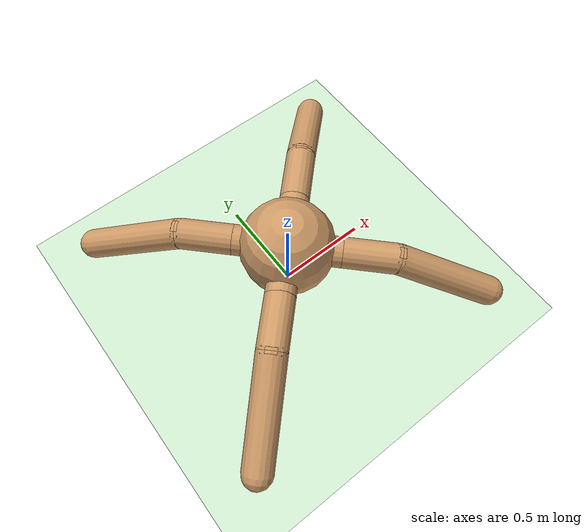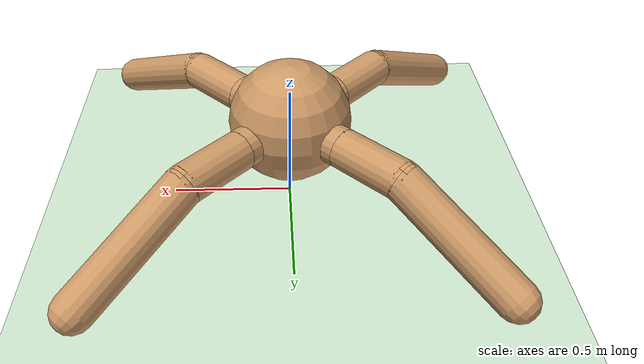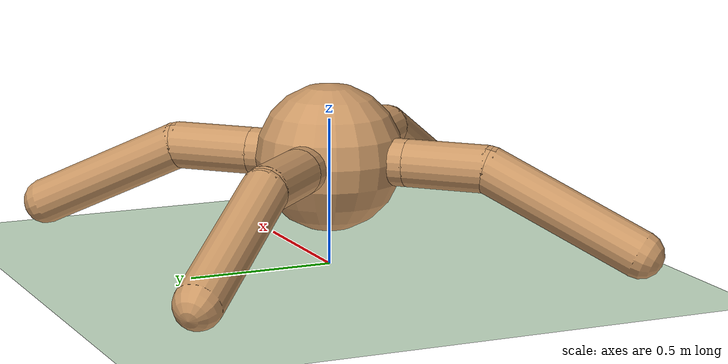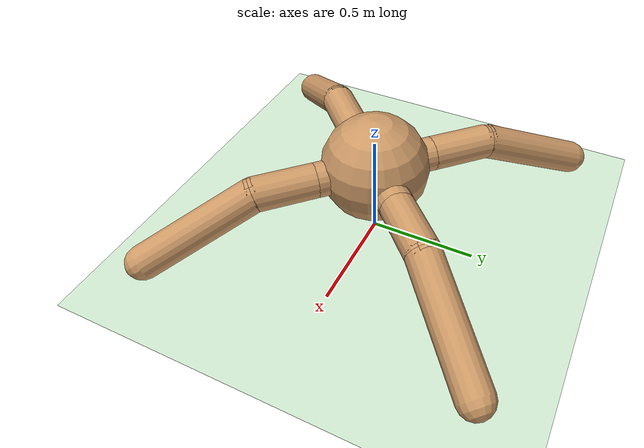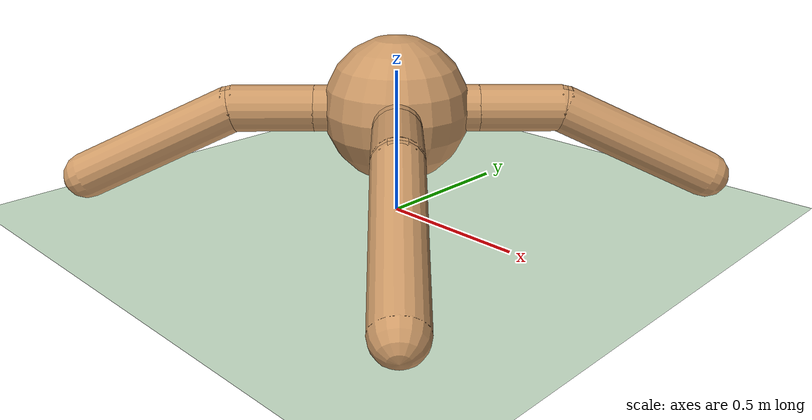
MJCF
<mujoco model="quad">
  <compiler angle="radian"/>

  <option timestep="0.01" integrator="RK4"/>

  <default>
    <joint limited="true" armature="1" damping="1"/>
    <geom conaffinity="0" friction="1 0.5 0.5" margin="0.01" density="5" rgba="0.8 0.6 0.4 1"/>
  </default>

  <asset>
    <texture type="skybox" colorspace="auto" name="sky" builtin="gradient" rgb1="1 1 1" rgb2="0 0 0" width="100" height="600"/>
    <texture type="2d" colorspace="auto" name="texplane" builtin="checker" rgb1="0 0 0" rgb2="0.8 0.8 0.8" width="100" height="100"/>
    <material name="MatPlane" texture="texplane" texrepeat="60 60" specular="1" shininess="1" reflectance="0.5"/>
  </asset>

  <worldbody>
    <geom name="floor" size="40 40 40" type="plane" conaffinity="1" material="MatPlane" rgba="0.8 0.9 0.8 1"/>
    <light pos="0 0 1.3" dir="0 0 -1" type="directional" cutoff="100" diffuse="1 1 1" specular="0.1 0.1 0.1"/>
    <body name="torso" pos="0 0 0.370892">
      <joint name="root" type="free" margin="0.01" armature="0" damping="0"/>
      <geom name="torso_geom" size="0.25"/>
      <camera name="track" pos="0 -3 0.3" quat="0.707107 0.707107 0 0" mode="trackcom"/>
      <body name="leg1">
        <geom name="leg1_mount_geom" size="0.08 0.14" pos="0.0989949 0.0989949 0" quat="0.707107 0.5 -0.5 0" type="capsule"/>
        <body name="leg1_seg1" pos="0.19799 0.19799 0">
          <joint name="leg1_seg1_joint" pos="0 0 0" axis="0 0 1" range="-0.610865 0.610865"/>
          <geom name="leg1_seg1_geom" size="0.08 0.14" pos="0.0989949 0.0989949 0" quat="0.707107 0.5 -0.5 0" type="capsule"/>
          <body name="leg1_seg2" pos="0.19799 0.19799 0">
            <joint name="leg1_seg2_joint" pos="0 0 0" axis="-0.707107 0.707107 0" range="-0.785398 0.785398"/>
            <geom name="leg1_seg2_geom" size="0.08 0.285" pos="0.182644 0.182644 -0.120446" quat="0.843391 0.379928 -0.379928 0" type="capsule"/>
          </body>
        </body>
      </body>
      <body name="leg2">
        <geom name="leg2_mount_geom" size="0.08 0.14" pos="-0.0989949 0.0989949 0" quat="0.707107 0.5 0.5 0" type="capsule"/>
        <body name="leg2_seg1" pos="-0.19799 0.19799 0">
          <joint name="leg2_seg1_joint" pos="0 0 0" axis="0 0 1" range="-0.610865 0.610865"/>
          <geom name="leg2_seg1_geom" size="0.08 0.14" pos="-0.0989949 0.0989949 0" quat="0.707107 0.5 0.5 0" type="capsule"/>
          <body name="leg2_seg2" pos="-0.19799 0.19799 0">
            <joint name="leg2_seg2_joint" pos="0 0 0" axis="-0.707107 -0.707107 0" range="-0.785398 0.785398"/>
            <geom name="leg2_seg2_geom" size="0.08 0.285" pos="-0.182644 0.182644 -0.120446" quat="0.843391 0.379928 0.379928 0" type="capsule"/>
          </body>
        </body>
      </body>
      <body name="leg3">
        <geom name="leg3_mount_geom" size="0.08 0.14" pos="-0.0989949 -0.0989949 0" quat="0.707107 -0.5 0.5 0" type="capsule"/>
        <body name="leg3_seg1" pos="-0.19799 -0.19799 0">
          <joint name="leg3_seg1_joint" pos="0 0 0" axis="0 0 1" range="-0.610865 0.610865"/>
          <geom name="leg3_seg1_geom" size="0.08 0.14" pos="-0.0989949 -0.0989949 0" quat="0.707107 -0.5 0.5 0" type="capsule"/>
          <body name="leg3_seg2" pos="-0.19799 -0.19799 0">
            <joint name="leg3_seg2_joint" pos="0 0 0" axis="0.707107 -0.707107 0" range="-0.785398 0.785398"/>
            <geom name="leg3_seg2_geom" size="0.08 0.285" pos="-0.182644 -0.182644 -0.120446" quat="0.843391 -0.379928 0.379928 0" type="capsule"/>
          </body>
        </body>
      </body>
      <body name="leg4">
        <geom name="leg4_mount_geom" size="0.08 0.14" pos="0.0989949 -0.0989949 0" quat="0.707107 -0.5 -0.5 0" type="capsule"/>
        <body name="leg4_seg1" pos="0.19799 -0.19799 0">
          <joint name="leg4_seg1_joint" pos="0 0 0" axis="0 0 1" range="-0.610865 0.610865"/>
          <geom name="leg4_seg1_geom" size="0.08 0.14" pos="0.0989949 -0.0989949 0" quat="0.707107 -0.5 -0.5 0" type="capsule"/>
          <body name="leg4_seg2" pos="0.19799 -0.19799 0">
            <joint name="leg4_seg2_joint" pos="0 0 0" axis="0.707107 0.707107 0" range="-0.785398 0.785398"/>
            <geom name="leg4_seg2_geom" size="0.08 0.285" pos="0.182644 -0.182644 -0.120446" quat="0.843391 -0.379928 -0.379928 0" type="capsule"/>
          </body>
        </body>
      </body>
    </body>
  </worldbody>

  <actuator>
    <general name="leg1_seg1_motor" joint="leg1_seg1_joint" ctrllimited="true" ctrlrange="-1 1" gear="150 0 0 0 0 0"/>
    <general name="leg1_seg2_motor" joint="leg1_seg2_joint" ctrllimited="true" ctrlrange="-1 1" gear="150 0 0 0 0 0"/>
    <general name="leg2_seg1_motor" joint="leg2_seg1_joint" ctrllimited="true" ctrlrange="-1 1" gear="150 0 0 0 0 0"/>
    <general name="leg2_seg2_motor" joint="leg2_seg2_joint" ctrllimited="true" ctrlrange="-1 1" gear="150 0 0 0 0 0"/>
    <general name="leg3_seg1_motor" joint="leg3_seg1_joint" ctrllimited="true" ctrlrange="-1 1" gear="150 0 0 0 0 0"/>
    <general name="leg3_seg2_motor" joint="leg3_seg2_joint" ctrllimited="true" ctrlrange="-1 1" gear="150 0 0 0 0 0"/>
    <general name="leg4_seg1_motor" joint="leg4_seg1_joint" ctrllimited="true" ctrlrange="-1 1" gear="150 0 0 0 0 0"/>
    <general name="leg4_seg2_motor" joint="leg4_seg2_joint" ctrllimited="true" ctrlrange="-1 1" gear="150 0 0 0 0 0"/>
  </actuator>
</mujoco>
